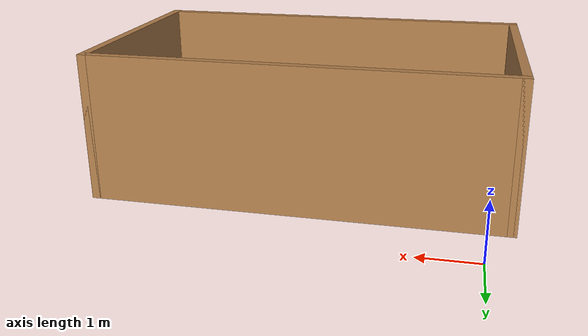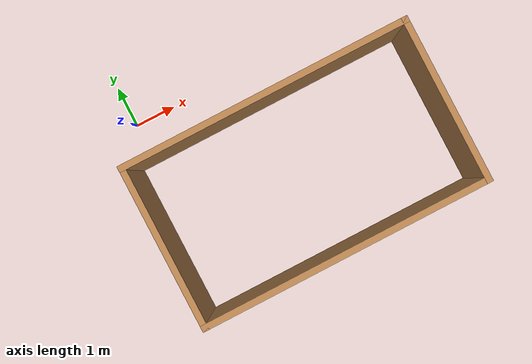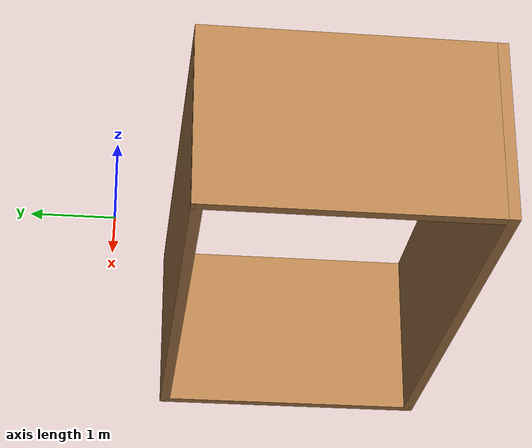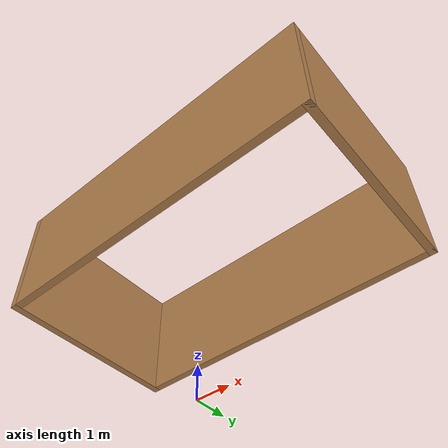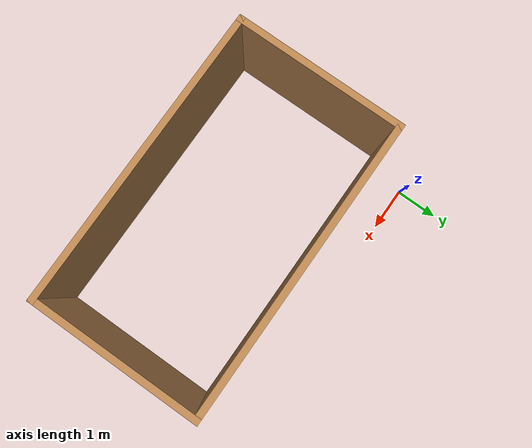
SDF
<?xml version='1.0'?>
<sdf version='1.7'>
  <model name='room2'>
    <pose>3.005 -2.4425 0 0 -0 0</pose>
    <link name='Wall_0'>
      <collision name='Wall_0_Collision'>
        <geometry>
          <box>
            <size>7 0.15 2.5</size>
          </box>
        </geometry>
        <pose>0 0 1.25 0 -0 0</pose>
      </collision>
      <visual name='Wall_0_Visual'>
        <pose>0 0 1.25 0 -0 0</pose>
        <geometry>
          <box>
            <size>7 0.15 2.5</size>
          </box>
        </geometry>
        <material>
          <script>
            <uri>file://media/materials/scripts/gazebo.material</uri>
            <name>Gazebo/Wood</name>
          </script>
          <ambient>1 1 1 1</ambient>
        </material>
        <meta>
          <layer>0</layer>
        </meta>
      </visual>
      <pose>0 1.4825 0 0 -0 0</pose>
    </link>
    <link name='Wall_1'>
      <collision name='Wall_1_Collision'>
        <geometry>
          <box>
            <size>4 0.15 2.5</size>
          </box>
        </geometry>
        <pose>0 0 1.25 0 -0 0</pose>
      </collision>
      <visual name='Wall_1_Visual'>
        <pose>0 0 1.25 0 -0 0</pose>
        <geometry>
          <box>
            <size>4 0.15 2.5</size>
          </box>
        </geometry>
        <material>
          <script>
            <uri>file://media/materials/scripts/gazebo.material</uri>
            <name>Gazebo/Wood</name>
          </script>
          <ambient>1 1 1 1</ambient>
        </material>
        <meta>
          <layer>0</layer>
        </meta>
      </visual>
      <pose>3.425 -0.4425 0 0 -0 -1.5708</pose>
    </link>
    <link name='Wall_2'>
      <collision name='Wall_2_Collision'>
        <geometry>
          <box>
            <size>7 0.15 2.5</size>
          </box>
        </geometry>
        <pose>0 0 1.25 0 -0 0</pose>
      </collision>
      <visual name='Wall_2_Visual'>
        <pose>0 0 1.25 0 -0 0</pose>
        <geometry>
          <box>
            <size>7 0.15 2.5</size>
          </box>
        </geometry>
        <material>
          <script>
            <uri>file://media/materials/scripts/gazebo.material</uri>
            <name>Gazebo/Wood</name>
          </script>
          <ambient>1 1 1 1</ambient>
        </material>
        <meta>
          <layer>0</layer>
        </meta>
      </visual>
      <pose>0 -2.3675 0 0 -0 3.14159</pose>
    </link>
    <link name='Wall_3'>
      <collision name='Wall_3_Collision'>
        <geometry>
          <box>
            <size>4 0.15 2.5</size>
          </box>
        </geometry>
        <pose>0 0 1.25 0 -0 0</pose>
      </collision>
      <visual name='Wall_3_Visual'>
        <pose>0 0 1.25 0 -0 0</pose>
        <geometry>
          <box>
            <size>4 0.15 2.5</size>
          </box>
        </geometry>
        <material>
          <script>
            <uri>file://media/materials/scripts/gazebo.material</uri>
            <name>Gazebo/Wood</name>
          </script>
          <ambient>1 1 1 1</ambient>
        </material>
        <meta>
          <layer>0</layer>
        </meta>
      </visual>
      <pose>-3.425 -0.4425 0 0 -0 1.5708</pose>
    </link>
    <static>1</static>
  </model>
</sdf>
